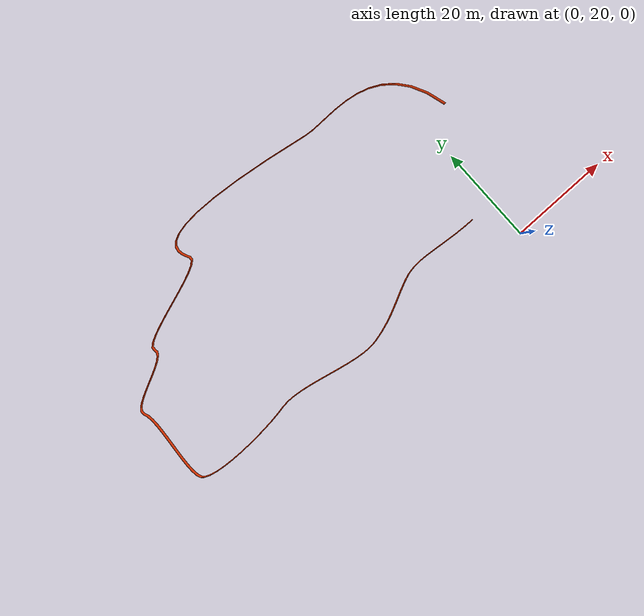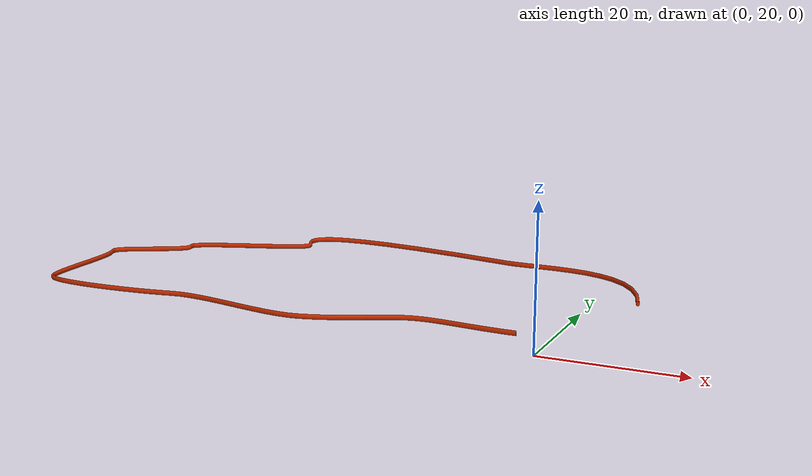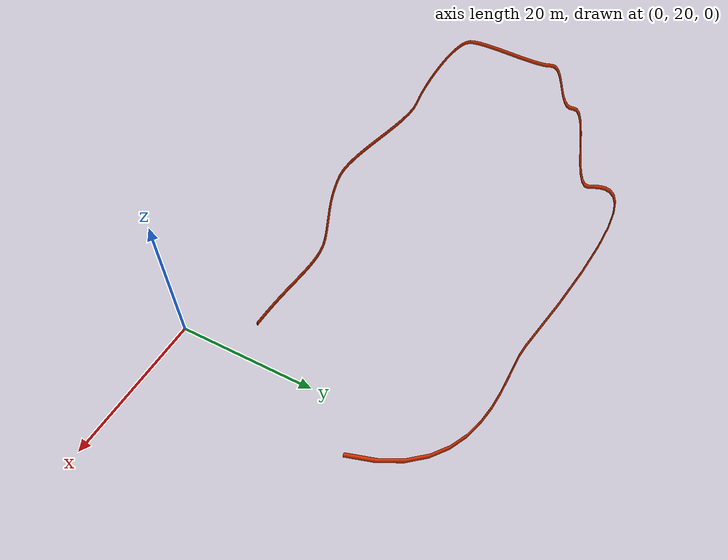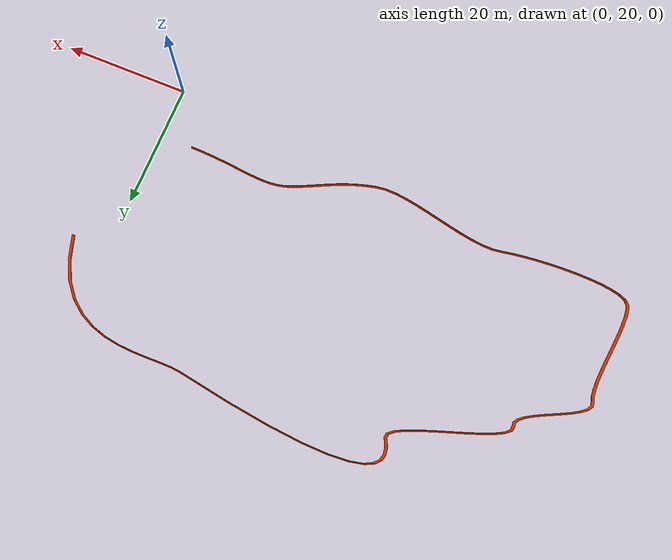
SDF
<sdf version="1.5">
  <model name="rope">
    <link name="rope">
      <static>false</static>
      <collision name="rope">
        <pose>0 0 0 0 0 0</pose>
        <geometry>
          <mesh>
            <uri>model://rope_large/meshes/rope_large.dae</uri>
            <scale>0.132 0.132 0.2</scale>
          </mesh>
        </geometry>

      </collision>

      <visual name="rope">
        <pose>0 0 0 0 0 0</pose>
        <cast_shadows>false</cast_shadows>
        <geometry>
          <mesh>
            <uri>model://rope_large/meshes/rope_large.dae</uri>
            <scale>0.1 0.1 0.5</scale>

          </mesh>
        </geometry>

      </visual>

       <kinematic>1</kinematic>
     </link>
  </model>
</sdf>
